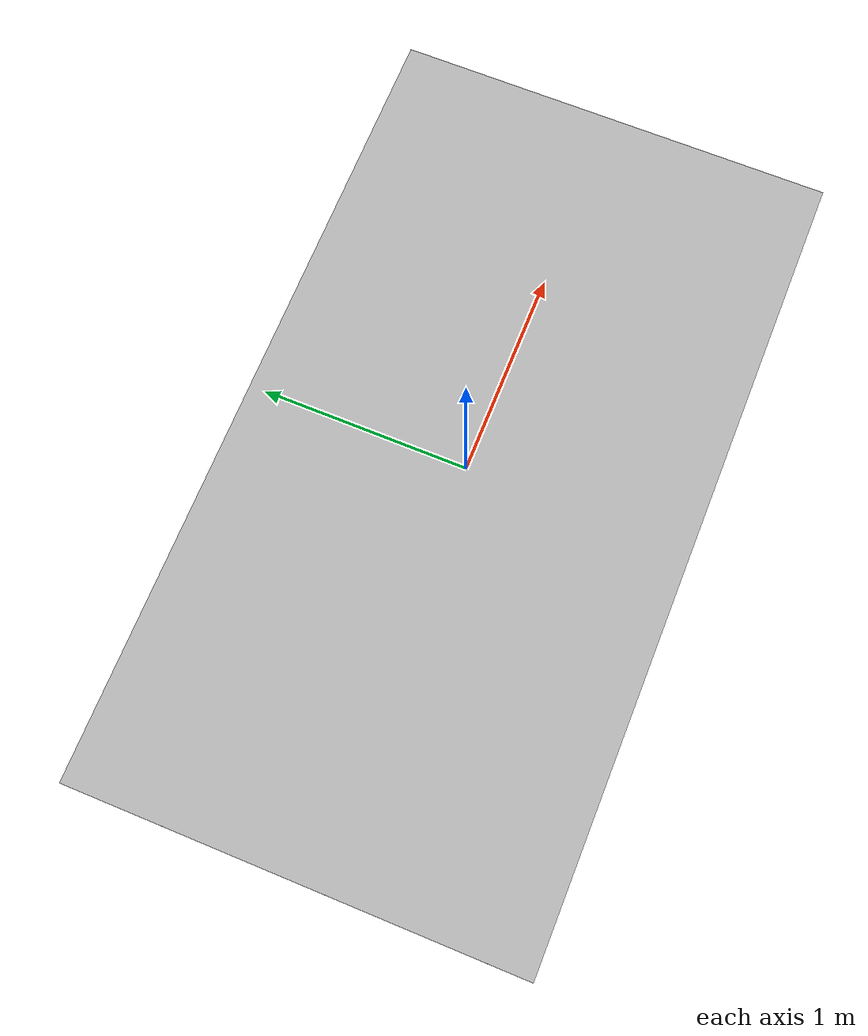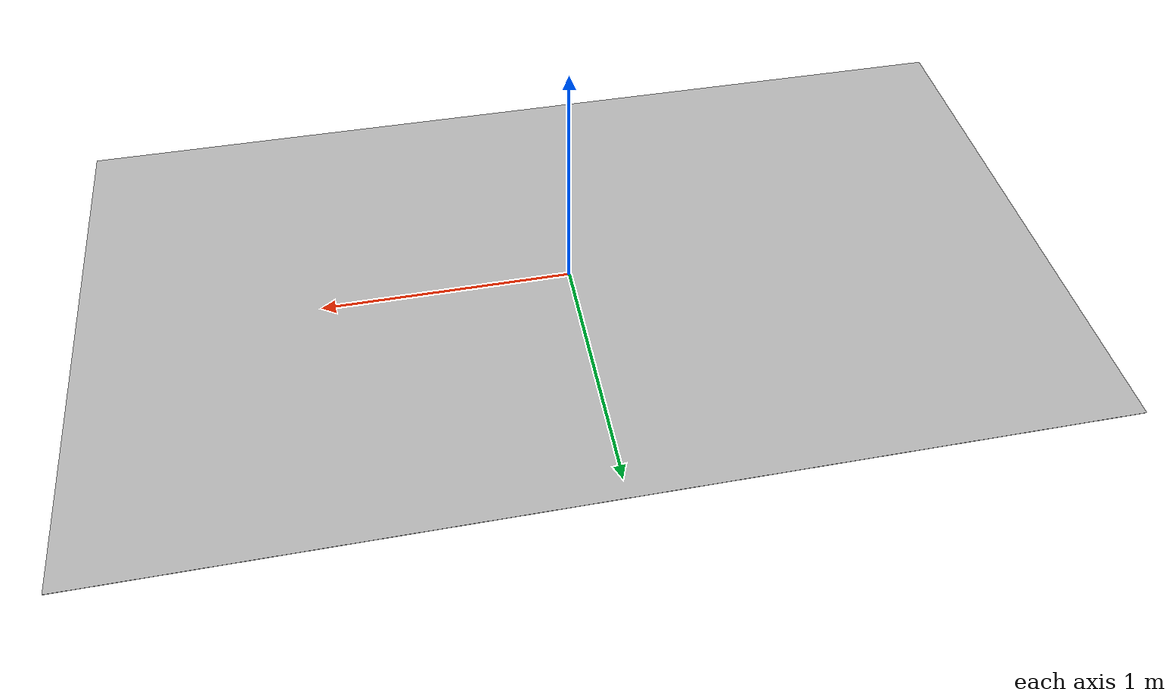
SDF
<?xml version="1.0"?>
<sdf version="1.6">
  <model name="old_track">
    <static>true</static>
    <link name="link">

      <collision name="col">
        <geometry>
          <box><size>3.9 2.16 0.002</size></box>
        </geometry>
      </collision>

      <visual name="vis">
        <geometry>
          <box><size>3.9 2.16 0.002</size></box>
        </geometry>
        <material>
          <script>
            <uri>model://old_track/materials/scripts/track.material</uri>
            <uri>model://old_track/materials/textures</uri>
            <name>Track/Surface</name>
          </script>
        </material>
      </visual>

    </link>
  </model>
</sdf>
